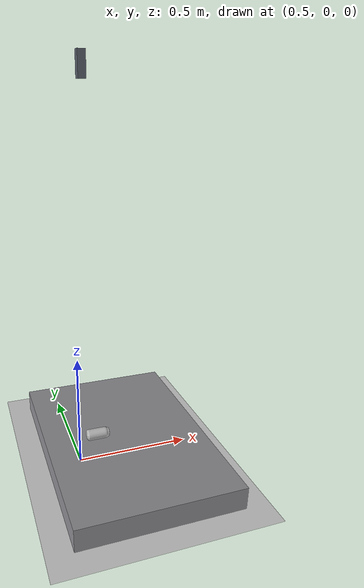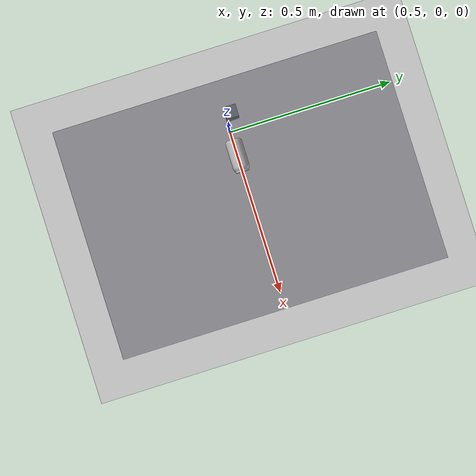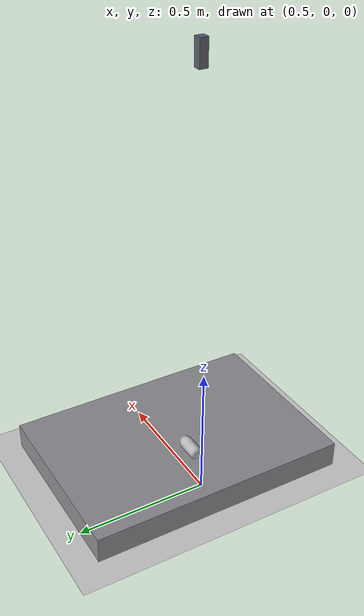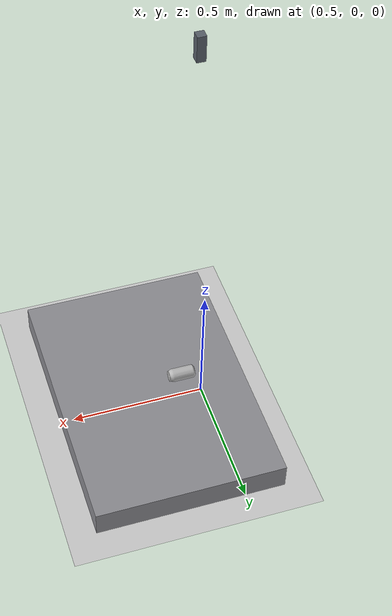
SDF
<?xml version="1.0"?>
<sdf version="1.6">
  <world name="aubo_yolo_sorting">
    <!-- Contact-assisted grasping for the beverage can. -->
    <plugin name="aubo_grasp_attach"
            filename="libaubo_grasp_attach_plugin.so">
      <robot_model>aubo_i5</robot_model>
      <enable_base_lock>false</enable_base_lock>
      <!-- wrist3_Link is guaranteed to survive URDF fixed-joint lumping; the
           fixed gripper base has the same pose in this model. -->
      <palm_link>wrist3_Link</palm_link>
      <object_link>can_link</object_link>
      <max_attach_distance>0.18</max_attach_distance>
      <attach_topic>/sorting/grasp/attach</attach_topic>
      <detach_topic>/sorting/grasp/detach</detach_topic>
      <status_topic>/sorting/grasp/status</status_topic>
    </plugin>
    <include><uri>model://ground_plane</uri></include>
    <include><uri>model://sun</uri></include>

    <!-- Fixed RGB-D camera used by eye-to-hand sorting and visual servo.
         Eye-in-hand modes use the wrist camera instead. -->
    <model name="workspace_camera">
      <static>true</static>
      <pose>0.55 0 1.60 0 1.57079632679 0</pose>
      <link name="workspace_camera_link">
        <collision name="camera_body_collision"><geometry><box><size>0.09 0.03 0.03</size></box></geometry></collision>
        <visual name="camera_body_visual">
          <geometry><box><size>0.09 0.03 0.03</size></box></geometry>
          <material><ambient>0.20 0.22 0.25 1</ambient><diffuse>0.35 0.38 0.42 1</diffuse></material>
        </visual>
        <sensor type="depth" name="workspace_camera_rgbd">
          <pose>0.045 0 0 0 0 0</pose>
          <always_on>true</always_on><visualize>false</visualize><update_rate>20</update_rate>
          <camera name="workspace_camera_sensor">
            <horizontal_fov>1.0471975512</horizontal_fov>
            <image><width>640</width><height>480</height><format>R8G8B8</format></image>
            <clip><near>0.15</near><far>3.0</far></clip>
          </camera>
          <plugin name="workspace_camera_gazebo_ros_openni" filename="libgazebo_ros_openni_kinect.so">
            <cameraName>workspace_camera</cameraName>
            <imageTopicName>color/image_raw</imageTopicName>
            <cameraInfoTopicName>color/camera_info</cameraInfoTopicName>
            <depthImageTopicName>aligned_depth_to_color/image_raw</depthImageTopicName>
            <depthImageCameraInfoTopicName>aligned_depth_to_color/camera_info</depthImageCameraInfoTopicName>
            <pointCloudTopicName>depth/color/points</pointCloudTopicName>
            <frameName>workspace_camera_color_optical_frame</frameName>
            <pointCloudCutoff>0.15</pointCloudCutoff><pointCloudCutoffMax>3.0</pointCloudCutoffMax>
          </plugin>
        </sensor>
      </link>
    </model>

    <!-- Fixed-base AUBO: base_link is at world z=0.  The deliberately low
         table top is therefore z=0.10 in both world and base_link. -->
    <model name="sorting_table">
      <static>true</static>
      <pose>0.70 0 0.0 0 0 0</pose>
      <link name="table_link">
        <collision name="collision">
          <geometry><box><size>0.70 1.00 0.20</size></box></geometry>
        </collision>
        <visual name="visual">
          <geometry><box><size>0.70 1.00 0.20</size></box></geometry>
          <material>
            <ambient>0.45 0.45 0.47 1</ambient>
            <diffuse>0.55 0.55 0.57 1</diffuse>
          </material>
        </visual>
      </link>
    </model>

    <!-- Lying beverage can: diameter 50 mm, axial length 100 mm.
         Rotate the cylinder axis into world X; center = table top + radius. -->
    <model name="beverage_can">
      <pose>0.58 0 0.125 0 1.57079632679 0</pose>
      <link name="can_link">
        <inertial>
          <mass>0.05</mass>
          <inertia><ixx>0.0000494792</ixx><iyy>0.0000494792</iyy><izz>0.000015625</izz></inertia>
        </inertial>
        <collision name="can_collision">
          <geometry><cylinder><radius>0.025</radius><length>0.10</length></cylinder></geometry>
          <surface>
            <friction><ode><mu>1.0</mu><mu2>1.0</mu2></ode></friction>
            <contact><ode><kp>1000000</kp><kd>100</kd><max_vel>0.01</max_vel><min_depth>0.001</min_depth></ode></contact>
          </surface>
        </collision>
        <!-- Textured can mesh, centered and fitted to the 50 x 100 mm collision. -->
        <visual name="printed_body">
          <geometry>
            <mesh>
              <uri>model://aubo_perception/models/beverage_can/meshes/coke_can.dae</uri>
            </mesh>
          </geometry>
        </visual>
      </link>
    </model>

    <physics name="sorting_physics" type="ode">
      <max_step_size>0.001</max_step_size>
      <real_time_update_rate>1000</real_time_update_rate>
      <ode><solver><type>quick</type><iters>150</iters><sor>1.3</sor></solver></ode>
    </physics>
  </world>
</sdf>
